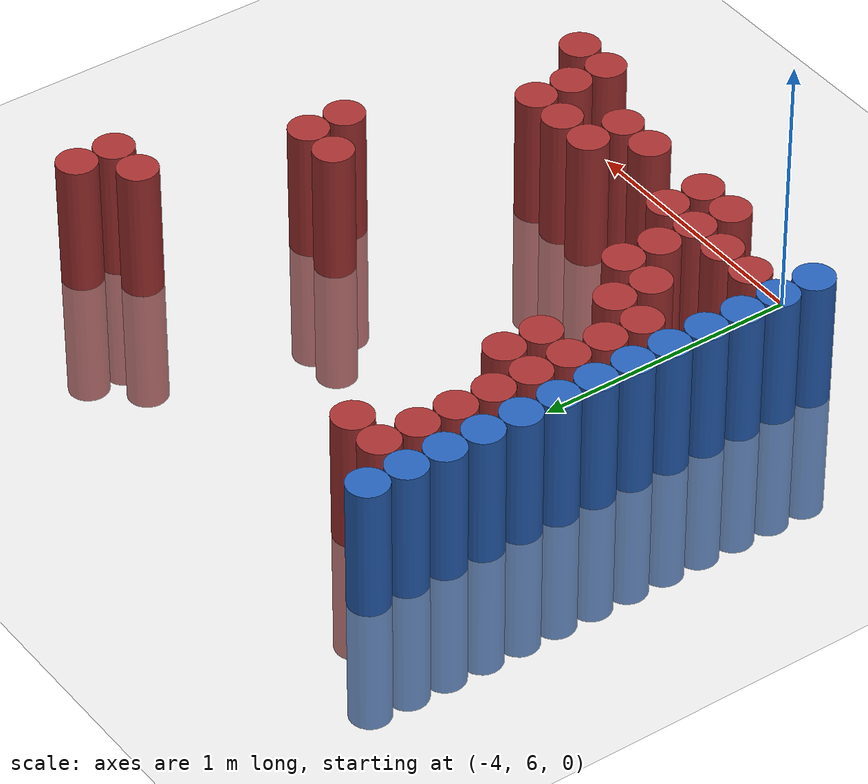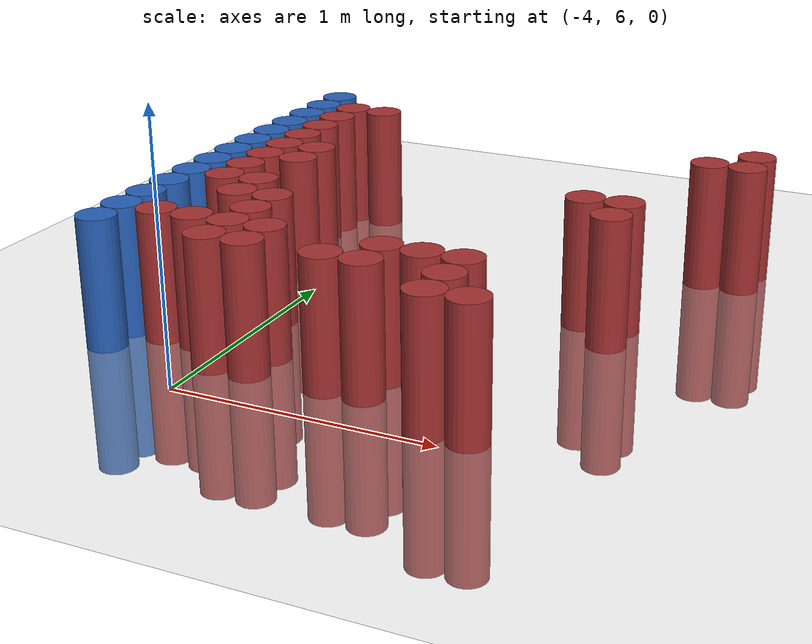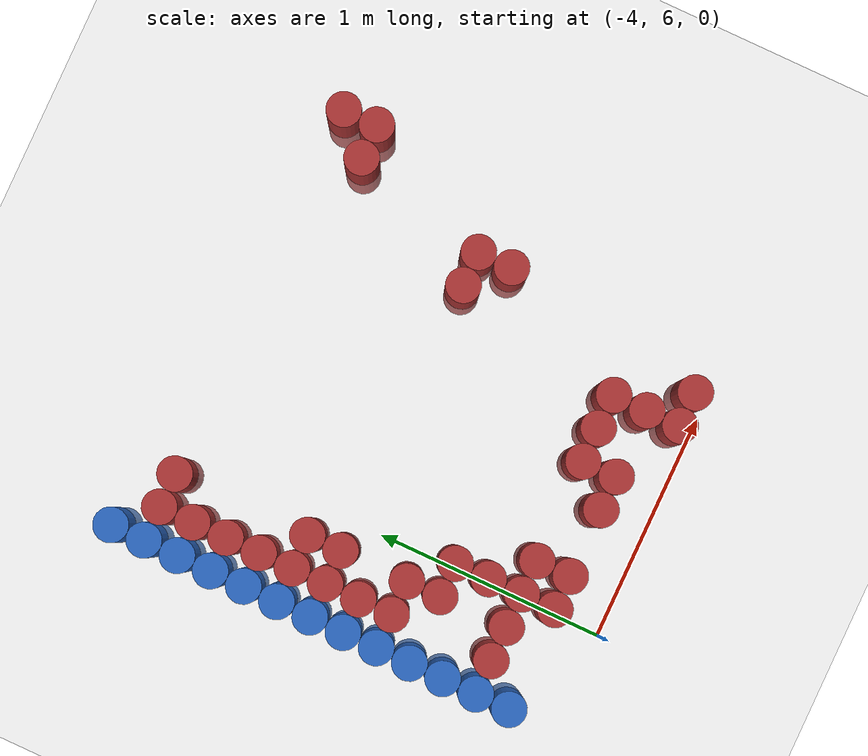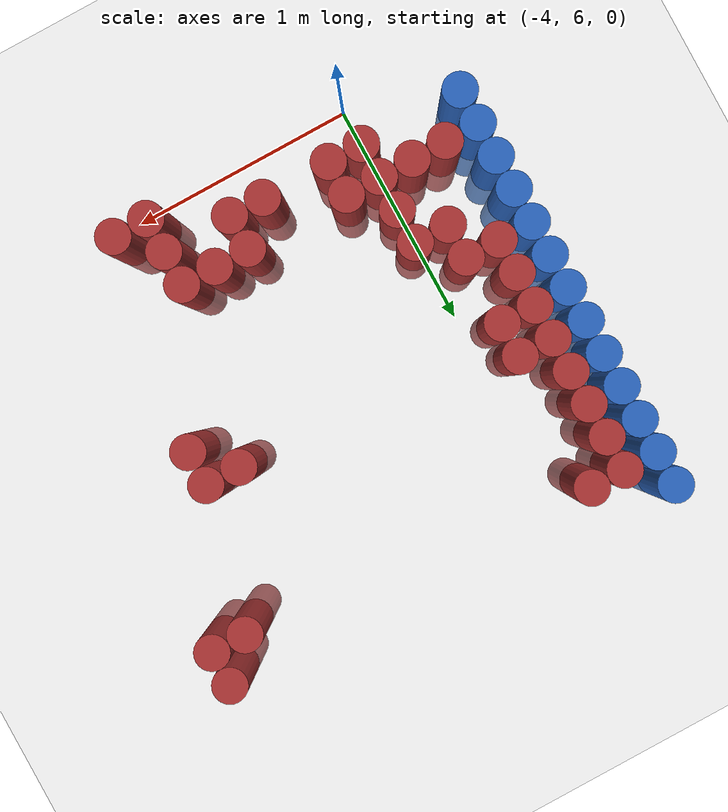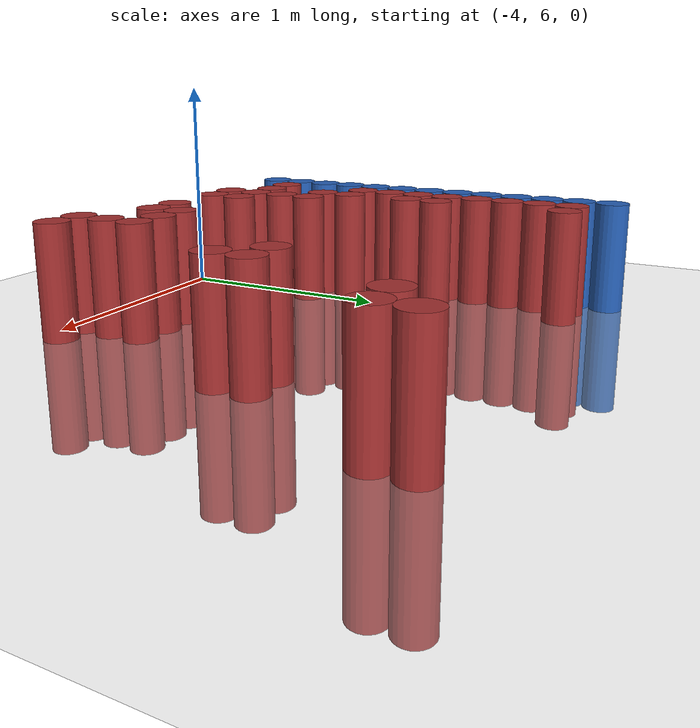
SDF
<sdf version="1.6">
 <world name="default">
  <model name="ground_plane">
   <static>1</static>
   <link name="link">
    <collision name="collision">
     <geometry><plane><normal>0 0 1</normal><size>100 100</size></plane></geometry>
     <surface><friction><ode><mu>100</mu><mu2>50</mu2></ode></friction></surface>
    </collision>
    <visual name="visual">
     <cast_shadows>0</cast_shadows>
     <geometry><plane><normal>0 0 1</normal><size>100 100</size></plane></geometry>
     <material>
      <script><uri>file://media/materials/scripts/gazebo.material</uri><name>Gazebo/Grey</name></script>
     </material>
    </visual>
   </link>
  </model>
  <model name="unit_cylinder_103">
   <static>1</static>
   <pose>-4.425000 6.225000 0.000000 0.000000 0.000000 0.000000</pose>
   <link name="link">
    <inertial>
     <mass>1</mass>
     <inertia><ixx>0.145833</ixx><ixy>0</ixy><ixz>0</ixz><iyy>0.145833</iyy><iyz>0</iyz><izz>0.125</izz></inertia>
    </inertial>
    <collision name="collision">
     <geometry><cylinder><radius>0.075000</radius><length>1</length></cylinder></geometry>
    </collision>
    <visual name="visual">
     <geometry><cylinder><radius>0.075000</radius><length>1</length></cylinder></geometry>
     <material>
      <ambient>0.152000 0.379000 0.720000 1</ambient>
      <diffuse>0.152000 0.379000 0.720000 1</diffuse>
     </material>
     <material>
      <script><name>Gazebo/Grey</name><uri>file://media/materials/scripts/gazebo.material</uri></script>
     </material>
    </visual>
   </link>
  </model>
  <model name="unit_cylinder_104">
   <static>1</static>
   <pose>-4.425000 6.375000 0.000000 0.000000 0.000000 0.000000</pose>
   <link name="link">
    <inertial>
     <mass>1</mass>
     <inertia><ixx>0.145833</ixx><ixy>0</ixy><ixz>0</ixz><iyy>0.145833</iyy><iyz>0</iyz><izz>0.125</izz></inertia>
    </inertial>
    <collision name="collision">
     <geometry><cylinder><radius>0.075000</radius><length>1</length></cylinder></geometry>
    </collision>
    <visual name="visual">
     <geometry><cylinder><radius>0.075000</radius><length>1</length></cylinder></geometry>
     <material>
      <ambient>0.152000 0.379000 0.720000 1</ambient>
      <diffuse>0.152000 0.379000 0.720000 1</diffuse>
     </material>
     <material>
      <script><name>Gazebo/Grey</name><uri>file://media/materials/scripts/gazebo.material</uri></script>
     </material>
    </visual>
   </link>
  </model>
  <model name="unit_cylinder_105">
   <static>1</static>
   <pose>-4.425000 6.525000 0.000000 0.000000 0.000000 0.000000</pose>
   <link name="link">
    <inertial>
     <mass>1</mass>
     <inertia><ixx>0.145833</ixx><ixy>0</ixy><ixz>0</ixz><iyy>0.145833</iyy><iyz>0</iyz><izz>0.125</izz></inertia>
    </inertial>
    <collision name="collision">
     <geometry><cylinder><radius>0.075000</radius><length>1</length></cylinder></geometry>
    </collision>
    <visual name="visual">
     <geometry><cylinder><radius>0.075000</radius><length>1</length></cylinder></geometry>
     <material>
      <ambient>0.152000 0.379000 0.720000 1</ambient>
      <diffuse>0.152000 0.379000 0.720000 1</diffuse>
     </material>
     <material>
      <script><name>Gazebo/Grey</name><uri>file://media/materials/scripts/gazebo.material</uri></script>
     </material>
    </visual>
   </link>
  </model>
  <model name="unit_cylinder_106">
   <static>1</static>
   <pose>-4.425000 6.675000 0.000000 0.000000 0.000000 0.000000</pose>
   <link name="link">
    <inertial>
     <mass>1</mass>
     <inertia><ixx>0.145833</ixx><ixy>0</ixy><ixz>0</ixz><iyy>0.145833</iyy><iyz>0</iyz><izz>0.125</izz></inertia>
    </inertial>
    <collision name="collision">
     <geometry><cylinder><radius>0.075000</radius><length>1</length></cylinder></geometry>
    </collision>
    <visual name="visual">
     <geometry><cylinder><radius>0.075000</radius><length>1</length></cylinder></geometry>
     <material>
      <ambient>0.152000 0.379000 0.720000 1</ambient>
      <diffuse>0.152000 0.379000 0.720000 1</diffuse>
     </material>
     <material>
      <script><name>Gazebo/Grey</name><uri>file://media/materials/scripts/gazebo.material</uri></script>
     </material>
    </visual>
   </link>
  </model>
  <model name="unit_cylinder_107">
   <static>1</static>
   <pose>-4.425000 6.825000 0.000000 0.000000 0.000000 0.000000</pose>
   <link name="link">
    <inertial>
     <mass>1</mass>
     <inertia><ixx>0.145833</ixx><ixy>0</ixy><ixz>0</ixz><iyy>0.145833</iyy><iyz>0</iyz><izz>0.125</izz></inertia>
    </inertial>
    <collision name="collision">
     <geometry><cylinder><radius>0.075000</radius><length>1</length></cylinder></geometry>
    </collision>
    <visual name="visual">
     <geometry><cylinder><radius>0.075000</radius><length>1</length></cylinder></geometry>
     <material>
      <ambient>0.152000 0.379000 0.720000 1</ambient>
      <diffuse>0.152000 0.379000 0.720000 1</diffuse>
     </material>
     <material>
      <script><name>Gazebo/Grey</name><uri>file://media/materials/scripts/gazebo.material</uri></script>
     </material>
    </visual>
   </link>
  </model>
  <model name="unit_cylinder_108">
   <static>1</static>
   <pose>-4.425000 6.975000 0.000000 0.000000 0.000000 0.000000</pose>
   <link name="link">
    <inertial>
     <mass>1</mass>
     <inertia><ixx>0.145833</ixx><ixy>0</ixy><ixz>0</ixz><iyy>0.145833</iyy><iyz>0</iyz><izz>0.125</izz></inertia>
    </inertial>
    <collision name="collision">
     <geometry><cylinder><radius>0.075000</radius><length>1</length></cylinder></geometry>
    </collision>
    <visual name="visual">
     <geometry><cylinder><radius>0.075000</radius><length>1</length></cylinder></geometry>
     <material>
      <ambient>0.152000 0.379000 0.720000 1</ambient>
      <diffuse>0.152000 0.379000 0.720000 1</diffuse>
     </material>
     <material>
      <script><name>Gazebo/Grey</name><uri>file://media/materials/scripts/gazebo.material</uri></script>
     </material>
    </visual>
   </link>
  </model>
  <model name="unit_cylinder_109">
   <static>1</static>
   <pose>-4.425000 7.125000 0.000000 0.000000 0.000000 0.000000</pose>
   <link name="link">
    <inertial>
     <mass>1</mass>
     <inertia><ixx>0.145833</ixx><ixy>0</ixy><ixz>0</ixz><iyy>0.145833</iyy><iyz>0</iyz><izz>0.125</izz></inertia>
    </inertial>
    <collision name="collision">
     <geometry><cylinder><radius>0.075000</radius><length>1</length></cylinder></geometry>
    </collision>
    <visual name="visual">
     <geometry><cylinder><radius>0.075000</radius><length>1</length></cylinder></geometry>
     <material>
      <ambient>0.152000 0.379000 0.720000 1</ambient>
      <diffuse>0.152000 0.379000 0.720000 1</diffuse>
     </material>
     <material>
      <script><name>Gazebo/Grey</name><uri>file://media/materials/scripts/gazebo.material</uri></script>
     </material>
    </visual>
   </link>
  </model>
  <model name="unit_cylinder_110">
   <static>1</static>
   <pose>-4.425000 7.275000 0.000000 0.000000 0.000000 0.000000</pose>
   <link name="link">
    <inertial>
     <mass>1</mass>
     <inertia><ixx>0.145833</ixx><ixy>0</ixy><ixz>0</ixz><iyy>0.145833</iyy><iyz>0</iyz><izz>0.125</izz></inertia>
    </inertial>
    <collision name="collision">
     <geometry><cylinder><radius>0.075000</radius><length>1</length></cylinder></geometry>
    </collision>
    <visual name="visual">
     <geometry><cylinder><radius>0.075000</radius><length>1</length></cylinder></geometry>
     <material>
      <ambient>0.152000 0.379000 0.720000 1</ambient>
      <diffuse>0.152000 0.379000 0.720000 1</diffuse>
     </material>
     <material>
      <script><name>Gazebo/Grey</name><uri>file://media/materials/scripts/gazebo.material</uri></script>
     </material>
    </visual>
   </link>
  </model>
  <model name="unit_cylinder_111">
   <static>1</static>
   <pose>-4.425000 7.425000 0.000000 0.000000 0.000000 0.000000</pose>
   <link name="link">
    <inertial>
     <mass>1</mass>
     <inertia><ixx>0.145833</ixx><ixy>0</ixy><ixz>0</ixz><iyy>0.145833</iyy><iyz>0</iyz><izz>0.125</izz></inertia>
    </inertial>
    <collision name="collision">
     <geometry><cylinder><radius>0.075000</radius><length>1</length></cylinder></geometry>
    </collision>
    <visual name="visual">
     <geometry><cylinder><radius>0.075000</radius><length>1</length></cylinder></geometry>
     <material>
      <ambient>0.152000 0.379000 0.720000 1</ambient>
      <diffuse>0.152000 0.379000 0.720000 1</diffuse>
     </material>
     <material>
      <script><name>Gazebo/Grey</name><uri>file://media/materials/scripts/gazebo.material</uri></script>
     </material>
    </visual>
   </link>
  </model>
  <model name="unit_cylinder_112">
   <static>1</static>
   <pose>-4.425000 7.575000 0.000000 0.000000 0.000000 0.000000</pose>
   <link name="link">
    <inertial>
     <mass>1</mass>
     <inertia><ixx>0.145833</ixx><ixy>0</ixy><ixz>0</ixz><iyy>0.145833</iyy><iyz>0</iyz><izz>0.125</izz></inertia>
    </inertial>
    <collision name="collision">
     <geometry><cylinder><radius>0.075000</radius><length>1</length></cylinder></geometry>
    </collision>
    <visual name="visual">
     <geometry><cylinder><radius>0.075000</radius><length>1</length></cylinder></geometry>
     <material>
      <ambient>0.152000 0.379000 0.720000 1</ambient>
      <diffuse>0.152000 0.379000 0.720000 1</diffuse>
     </material>
     <material>
      <script><name>Gazebo/Grey</name><uri>file://media/materials/scripts/gazebo.material</uri></script>
     </material>
    </visual>
   </link>
  </model>
  <model name="unit_cylinder_113">
   <static>1</static>
   <pose>-4.425000 7.725000 0.000000 0.000000 0.000000 0.000000</pose>
   <link name="link">
    <inertial>
     <mass>1</mass>
     <inertia><ixx>0.145833</ixx><ixy>0</ixy><ixz>0</ixz><iyy>0.145833</iyy><iyz>0</iyz><izz>0.125</izz></inertia>
    </inertial>
    <collision name="collision">
     <geometry><cylinder><radius>0.075000</radius><length>1</length></cylinder></geometry>
    </collision>
    <visual name="visual">
     <geometry><cylinder><radius>0.075000</radius><length>1</length></cylinder></geometry>
     <material>
      <ambient>0.152000 0.379000 0.720000 1</ambient>
      <diffuse>0.152000 0.379000 0.720000 1</diffuse>
     </material>
     <material>
      <script><name>Gazebo/Grey</name><uri>file://media/materials/scripts/gazebo.material</uri></script>
     </material>
    </visual>
   </link>
  </model>
  <model name="unit_cylinder_114">
   <static>1</static>
   <pose>-4.425000 7.875000 0.000000 0.000000 0.000000 0.000000</pose>
   <link name="link">
    <inertial>
     <mass>1</mass>
     <inertia><ixx>0.145833</ixx><ixy>0</ixy><ixz>0</ixz><iyy>0.145833</iyy><iyz>0</iyz><izz>0.125</izz></inertia>
    </inertial>
    <collision name="collision">
     <geometry><cylinder><radius>0.075000</radius><length>1</length></cylinder></geometry>
    </collision>
    <visual name="visual">
     <geometry><cylinder><radius>0.075000</radius><length>1</length></cylinder></geometry>
     <material>
      <ambient>0.152000 0.379000 0.720000 1</ambient>
      <diffuse>0.152000 0.379000 0.720000 1</diffuse>
     </material>
     <material>
      <script><name>Gazebo/Grey</name><uri>file://media/materials/scripts/gazebo.material</uri></script>
     </material>
    </visual>
   </link>
  </model>
  <model name="unit_cylinder_115">
   <static>1</static>
   <pose>-4.425000 8.025000 0.000000 0.000000 0.000000 0.000000</pose>
   <link name="link">
    <inertial>
     <mass>1</mass>
     <inertia><ixx>0.145833</ixx><ixy>0</ixy><ixz>0</ixz><iyy>0.145833</iyy><iyz>0</iyz><izz>0.125</izz></inertia>
    </inertial>
    <collision name="collision">
     <geometry><cylinder><radius>0.075000</radius><length>1</length></cylinder></geometry>
    </collision>
    <visual name="visual">
     <geometry><cylinder><radius>0.075000</radius><length>1</length></cylinder></geometry>
     <material>
      <ambient>0.152000 0.379000 0.720000 1</ambient>
      <diffuse>0.152000 0.379000 0.720000 1</diffuse>
     </material>
     <material>
      <script><name>Gazebo/Grey</name><uri>file://media/materials/scripts/gazebo.material</uri></script>
     </material>
    </visual>
   </link>
  </model>
  <model name="unit_cylinder_127">
   <static>1</static>
   <pose>-4.275000 6.375000 0.000000 0.000000 0.000000 0.000000</pose>
   <link name="link">
    <inertial>
     <mass>1</mass>
     <inertia><ixx>0.145833</ixx><ixy>0</ixy><ixz>0</ixz><iyy>0.145833</iyy><iyz>0</iyz><izz>0.125</izz></inertia>
    </inertial>
    <collision name="collision">
     <geometry><cylinder><radius>0.075000</radius><length>1</length></cylinder></geometry>
    </collision>
    <visual name="visual">
     <geometry><cylinder><radius>0.075000</radius><length>1</length></cylinder></geometry>
     <material>
      <ambient>0.648000 0.192000 0.192000 1</ambient>
      <diffuse>0.648000 0.192000 0.192000 1</diffuse>
     </material>
     <material>
      <script><name>Gazebo/Grey</name><uri>file://media/materials/scripts/gazebo.material</uri></script>
     </material>
    </visual>
   </link>
  </model>
  <model name="unit_cylinder_128">
   <static>1</static>
   <pose>-4.275000 6.825000 0.000000 0.000000 0.000000 0.000000</pose>
   <link name="link">
    <inertial>
     <mass>1</mass>
     <inertia><ixx>0.145833</ixx><ixy>0</ixy><ixz>0</ixz><iyy>0.145833</iyy><iyz>0</iyz><izz>0.125</izz></inertia>
    </inertial>
    <collision name="collision">
     <geometry><cylinder><radius>0.075000</radius><length>1</length></cylinder></geometry>
    </collision>
    <visual name="visual">
     <geometry><cylinder><radius>0.075000</radius><length>1</length></cylinder></geometry>
     <material>
      <ambient>0.648000 0.192000 0.192000 1</ambient>
      <diffuse>0.648000 0.192000 0.192000 1</diffuse>
     </material>
     <material>
      <script><name>Gazebo/Grey</name><uri>file://media/materials/scripts/gazebo.material</uri></script>
     </material>
    </visual>
   </link>
  </model>
  <model name="unit_cylinder_129">
   <static>1</static>
   <pose>-4.275000 6.975000 0.000000 0.000000 0.000000 0.000000</pose>
   <link name="link">
    <inertial>
     <mass>1</mass>
     <inertia><ixx>0.145833</ixx><ixy>0</ixy><ixz>0</ixz><iyy>0.145833</iyy><iyz>0</iyz><izz>0.125</izz></inertia>
    </inertial>
    <collision name="collision">
     <geometry><cylinder><radius>0.075000</radius><length>1</length></cylinder></geometry>
    </collision>
    <visual name="visual">
     <geometry><cylinder><radius>0.075000</radius><length>1</length></cylinder></geometry>
     <material>
      <ambient>0.648000 0.192000 0.192000 1</ambient>
      <diffuse>0.648000 0.192000 0.192000 1</diffuse>
     </material>
     <material>
      <script><name>Gazebo/Grey</name><uri>file://media/materials/scripts/gazebo.material</uri></script>
     </material>
    </visual>
   </link>
  </model>
  <model name="unit_cylinder_130">
   <static>1</static>
   <pose>-4.275000 7.125000 0.000000 0.000000 0.000000 0.000000</pose>
   <link name="link">
    <inertial>
     <mass>1</mass>
     <inertia><ixx>0.145833</ixx><ixy>0</ixy><ixz>0</ixz><iyy>0.145833</iyy><iyz>0</iyz><izz>0.125</izz></inertia>
    </inertial>
    <collision name="collision">
     <geometry><cylinder><radius>0.075000</radius><length>1</length></cylinder></geometry>
    </collision>
    <visual name="visual">
     <geometry><cylinder><radius>0.075000</radius><length>1</length></cylinder></geometry>
     <material>
      <ambient>0.648000 0.192000 0.192000 1</ambient>
      <diffuse>0.648000 0.192000 0.192000 1</diffuse>
     </material>
     <material>
      <script><name>Gazebo/Grey</name><uri>file://media/materials/scripts/gazebo.material</uri></script>
     </material>
    </visual>
   </link>
  </model>
  <model name="unit_cylinder_131">
   <static>1</static>
   <pose>-4.275000 7.275000 0.000000 0.000000 0.000000 0.000000</pose>
   <link name="link">
    <inertial>
     <mass>1</mass>
     <inertia><ixx>0.145833</ixx><ixy>0</ixy><ixz>0</ixz><iyy>0.145833</iyy><iyz>0</iyz><izz>0.125</izz></inertia>
    </inertial>
    <collision name="collision">
     <geometry><cylinder><radius>0.075000</radius><length>1</length></cylinder></geometry>
    </collision>
    <visual name="visual">
     <geometry><cylinder><radius>0.075000</radius><length>1</length></cylinder></geometry>
     <material>
      <ambient>0.648000 0.192000 0.192000 1</ambient>
      <diffuse>0.648000 0.192000 0.192000 1</diffuse>
     </material>
     <material>
      <script><name>Gazebo/Grey</name><uri>file://media/materials/scripts/gazebo.material</uri></script>
     </material>
    </visual>
   </link>
  </model>
  <model name="unit_cylinder_132">
   <static>1</static>
   <pose>-4.275000 7.425000 0.000000 0.000000 0.000000 0.000000</pose>
   <link name="link">
    <inertial>
     <mass>1</mass>
     <inertia><ixx>0.145833</ixx><ixy>0</ixy><ixz>0</ixz><iyy>0.145833</iyy><iyz>0</iyz><izz>0.125</izz></inertia>
    </inertial>
    <collision name="collision">
     <geometry><cylinder><radius>0.075000</radius><length>1</length></cylinder></geometry>
    </collision>
    <visual name="visual">
     <geometry><cylinder><radius>0.075000</radius><length>1</length></cylinder></geometry>
     <material>
      <ambient>0.648000 0.192000 0.192000 1</ambient>
      <diffuse>0.648000 0.192000 0.192000 1</diffuse>
     </material>
     <material>
      <script><name>Gazebo/Grey</name><uri>file://media/materials/scripts/gazebo.material</uri></script>
     </material>
    </visual>
   </link>
  </model>
  <model name="unit_cylinder_133">
   <static>1</static>
   <pose>-4.275000 7.575000 0.000000 0.000000 0.000000 0.000000</pose>
   <link name="link">
    <inertial>
     <mass>1</mass>
     <inertia><ixx>0.145833</ixx><ixy>0</ixy><ixz>0</ixz><iyy>0.145833</iyy><iyz>0</iyz><izz>0.125</izz></inertia>
    </inertial>
    <collision name="collision">
     <geometry><cylinder><radius>0.075000</radius><length>1</length></cylinder></geometry>
    </collision>
    <visual name="visual">
     <geometry><cylinder><radius>0.075000</radius><length>1</length></cylinder></geometry>
     <material>
      <ambient>0.648000 0.192000 0.192000 1</ambient>
      <diffuse>0.648000 0.192000 0.192000 1</diffuse>
     </material>
     <material>
      <script><name>Gazebo/Grey</name><uri>file://media/materials/scripts/gazebo.material</uri></script>
     </material>
    </visual>
   </link>
  </model>
  <model name="unit_cylinder_134">
   <static>1</static>
   <pose>-4.275000 7.725000 0.000000 0.000000 0.000000 0.000000</pose>
   <link name="link">
    <inertial>
     <mass>1</mass>
     <inertia><ixx>0.145833</ixx><ixy>0</ixy><ixz>0</ixz><iyy>0.145833</iyy><iyz>0</iyz><izz>0.125</izz></inertia>
    </inertial>
    <collision name="collision">
     <geometry><cylinder><radius>0.075000</radius><length>1</length></cylinder></geometry>
    </collision>
    <visual name="visual">
     <geometry><cylinder><radius>0.075000</radius><length>1</length></cylinder></geometry>
     <material>
      <ambient>0.648000 0.192000 0.192000 1</ambient>
      <diffuse>0.648000 0.192000 0.192000 1</diffuse>
     </material>
     <material>
      <script><name>Gazebo/Grey</name><uri>file://media/materials/scripts/gazebo.material</uri></script>
     </material>
    </visual>
   </link>
  </model>
  <model name="unit_cylinder_135">
   <static>1</static>
   <pose>-4.275000 7.875000 0.000000 0.000000 0.000000 0.000000</pose>
   <link name="link">
    <inertial>
     <mass>1</mass>
     <inertia><ixx>0.145833</ixx><ixy>0</ixy><ixz>0</ixz><iyy>0.145833</iyy><iyz>0</iyz><izz>0.125</izz></inertia>
    </inertial>
    <collision name="collision">
     <geometry><cylinder><radius>0.075000</radius><length>1</length></cylinder></geometry>
    </collision>
    <visual name="visual">
     <geometry><cylinder><radius>0.075000</radius><length>1</length></cylinder></geometry>
     <material>
      <ambient>0.648000 0.192000 0.192000 1</ambient>
      <diffuse>0.648000 0.192000 0.192000 1</diffuse>
     </material>
     <material>
      <script><name>Gazebo/Grey</name><uri>file://media/materials/scripts/gazebo.material</uri></script>
     </material>
    </visual>
   </link>
  </model>
  <model name="unit_cylinder_138">
   <static>1</static>
   <pose>-4.125000 6.375000 0.000000 0.000000 0.000000 0.000000</pose>
   <link name="link">
    <inertial>
     <mass>1</mass>
     <inertia><ixx>0.145833</ixx><ixy>0</ixy><ixz>0</ixz><iyy>0.145833</iyy><iyz>0</iyz><izz>0.125</izz></inertia>
    </inertial>
    <collision name="collision">
     <geometry><cylinder><radius>0.075000</radius><length>1</length></cylinder></geometry>
    </collision>
    <visual name="visual">
     <geometry><cylinder><radius>0.075000</radius><length>1</length></cylinder></geometry>
     <material>
      <ambient>0.648000 0.192000 0.192000 1</ambient>
      <diffuse>0.648000 0.192000 0.192000 1</diffuse>
     </material>
     <material>
      <script><name>Gazebo/Grey</name><uri>file://media/materials/scripts/gazebo.material</uri></script>
     </material>
    </visual>
   </link>
  </model>
  <model name="unit_cylinder_139">
   <static>1</static>
   <pose>-4.125000 6.675000 0.000000 0.000000 0.000000 0.000000</pose>
   <link name="link">
    <inertial>
     <mass>1</mass>
     <inertia><ixx>0.145833</ixx><ixy>0</ixy><ixz>0</ixz><iyy>0.145833</iyy><iyz>0</iyz><izz>0.125</izz></inertia>
    </inertial>
    <collision name="collision">
     <geometry><cylinder><radius>0.075000</radius><length>1</length></cylinder></geometry>
    </collision>
    <visual name="visual">
     <geometry><cylinder><radius>0.075000</radius><length>1</length></cylinder></geometry>
     <material>
      <ambient>0.648000 0.192000 0.192000 1</ambient>
      <diffuse>0.648000 0.192000 0.192000 1</diffuse>
     </material>
     <material>
      <script><name>Gazebo/Grey</name><uri>file://media/materials/scripts/gazebo.material</uri></script>
     </material>
    </visual>
   </link>
  </model>
  <model name="unit_cylinder_140">
   <static>1</static>
   <pose>-4.125000 6.825000 0.000000 0.000000 0.000000 0.000000</pose>
   <link name="link">
    <inertial>
     <mass>1</mass>
     <inertia><ixx>0.145833</ixx><ixy>0</ixy><ixz>0</ixz><iyy>0.145833</iyy><iyz>0</iyz><izz>0.125</izz></inertia>
    </inertial>
    <collision name="collision">
     <geometry><cylinder><radius>0.075000</radius><length>1</length></cylinder></geometry>
    </collision>
    <visual name="visual">
     <geometry><cylinder><radius>0.075000</radius><length>1</length></cylinder></geometry>
     <material>
      <ambient>0.648000 0.192000 0.192000 1</ambient>
      <diffuse>0.648000 0.192000 0.192000 1</diffuse>
     </material>
     <material>
      <script><name>Gazebo/Grey</name><uri>file://media/materials/scripts/gazebo.material</uri></script>
     </material>
    </visual>
   </link>
  </model>
  <model name="unit_cylinder_141">
   <static>1</static>
   <pose>-4.125000 7.125000 0.000000 0.000000 0.000000 0.000000</pose>
   <link name="link">
    <inertial>
     <mass>1</mass>
     <inertia><ixx>0.145833</ixx><ixy>0</ixy><ixz>0</ixz><iyy>0.145833</iyy><iyz>0</iyz><izz>0.125</izz></inertia>
    </inertial>
    <collision name="collision">
     <geometry><cylinder><radius>0.075000</radius><length>1</length></cylinder></geometry>
    </collision>
    <visual name="visual">
     <geometry><cylinder><radius>0.075000</radius><length>1</length></cylinder></geometry>
     <material>
      <ambient>0.648000 0.192000 0.192000 1</ambient>
      <diffuse>0.648000 0.192000 0.192000 1</diffuse>
     </material>
     <material>
      <script><name>Gazebo/Grey</name><uri>file://media/materials/scripts/gazebo.material</uri></script>
     </material>
    </visual>
   </link>
  </model>
  <model name="unit_cylinder_142">
   <static>1</static>
   <pose>-4.125000 7.275000 0.000000 0.000000 0.000000 0.000000</pose>
   <link name="link">
    <inertial>
     <mass>1</mass>
     <inertia><ixx>0.145833</ixx><ixy>0</ixy><ixz>0</ixz><iyy>0.145833</iyy><iyz>0</iyz><izz>0.125</izz></inertia>
    </inertial>
    <collision name="collision">
     <geometry><cylinder><radius>0.075000</radius><length>1</length></cylinder></geometry>
    </collision>
    <visual name="visual">
     <geometry><cylinder><radius>0.075000</radius><length>1</length></cylinder></geometry>
     <material>
      <ambient>0.648000 0.192000 0.192000 1</ambient>
      <diffuse>0.648000 0.192000 0.192000 1</diffuse>
     </material>
     <material>
      <script><name>Gazebo/Grey</name><uri>file://media/materials/scripts/gazebo.material</uri></script>
     </material>
    </visual>
   </link>
  </model>
  <model name="unit_cylinder_143">
   <static>1</static>
   <pose>-4.125000 7.875000 0.000000 0.000000 0.000000 0.000000</pose>
   <link name="link">
    <inertial>
     <mass>1</mass>
     <inertia><ixx>0.145833</ixx><ixy>0</ixy><ixz>0</ixz><iyy>0.145833</iyy><iyz>0</iyz><izz>0.125</izz></inertia>
    </inertial>
    <collision name="collision">
     <geometry><cylinder><radius>0.075000</radius><length>1</length></cylinder></geometry>
    </collision>
    <visual name="visual">
     <geometry><cylinder><radius>0.075000</radius><length>1</length></cylinder></geometry>
     <material>
      <ambient>0.648000 0.192000 0.192000 1</ambient>
      <diffuse>0.648000 0.192000 0.192000 1</diffuse>
     </material>
     <material>
      <script><name>Gazebo/Grey</name><uri>file://media/materials/scripts/gazebo.material</uri></script>
     </material>
    </visual>
   </link>
  </model>
  <model name="unit_cylinder_151">
   <static>1</static>
   <pose>-3.975000 6.225000 0.000000 0.000000 0.000000 0.000000</pose>
   <link name="link">
    <inertial>
     <mass>1</mass>
     <inertia><ixx>0.145833</ixx><ixy>0</ixy><ixz>0</ixz><iyy>0.145833</iyy><iyz>0</iyz><izz>0.125</izz></inertia>
    </inertial>
    <collision name="collision">
     <geometry><cylinder><radius>0.075000</radius><length>1</length></cylinder></geometry>
    </collision>
    <visual name="visual">
     <geometry><cylinder><radius>0.075000</radius><length>1</length></cylinder></geometry>
     <material>
      <ambient>0.648000 0.192000 0.192000 1</ambient>
      <diffuse>0.648000 0.192000 0.192000 1</diffuse>
     </material>
     <material>
      <script><name>Gazebo/Grey</name><uri>file://media/materials/scripts/gazebo.material</uri></script>
     </material>
    </visual>
   </link>
  </model>
  <model name="unit_cylinder_152">
   <static>1</static>
   <pose>-3.975000 6.375000 0.000000 0.000000 0.000000 0.000000</pose>
   <link name="link">
    <inertial>
     <mass>1</mass>
     <inertia><ixx>0.145833</ixx><ixy>0</ixy><ixz>0</ixz><iyy>0.145833</iyy><iyz>0</iyz><izz>0.125</izz></inertia>
    </inertial>
    <collision name="collision">
     <geometry><cylinder><radius>0.075000</radius><length>1</length></cylinder></geometry>
    </collision>
    <visual name="visual">
     <geometry><cylinder><radius>0.075000</radius><length>1</length></cylinder></geometry>
     <material>
      <ambient>0.648000 0.192000 0.192000 1</ambient>
      <diffuse>0.648000 0.192000 0.192000 1</diffuse>
     </material>
     <material>
      <script><name>Gazebo/Grey</name><uri>file://media/materials/scripts/gazebo.material</uri></script>
     </material>
    </visual>
   </link>
  </model>
  <model name="unit_cylinder_153">
   <static>1</static>
   <pose>-3.975000 6.525000 0.000000 0.000000 0.000000 0.000000</pose>
   <link name="link">
    <inertial>
     <mass>1</mass>
     <inertia><ixx>0.145833</ixx><ixy>0</ixy><ixz>0</ixz><iyy>0.145833</iyy><iyz>0</iyz><izz>0.125</izz></inertia>
    </inertial>
    <collision name="collision">
     <geometry><cylinder><radius>0.075000</radius><length>1</length></cylinder></geometry>
    </collision>
    <visual name="visual">
     <geometry><cylinder><radius>0.075000</radius><length>1</length></cylinder></geometry>
     <material>
      <ambient>0.648000 0.192000 0.192000 1</ambient>
      <diffuse>0.648000 0.192000 0.192000 1</diffuse>
     </material>
     <material>
      <script><name>Gazebo/Grey</name><uri>file://media/materials/scripts/gazebo.material</uri></script>
     </material>
    </visual>
   </link>
  </model>
  <model name="unit_cylinder_154">
   <static>1</static>
   <pose>-3.975000 6.675000 0.000000 0.000000 0.000000 0.000000</pose>
   <link name="link">
    <inertial>
     <mass>1</mass>
     <inertia><ixx>0.145833</ixx><ixy>0</ixy><ixz>0</ixz><iyy>0.145833</iyy><iyz>0</iyz><izz>0.125</izz></inertia>
    </inertial>
    <collision name="collision">
     <geometry><cylinder><radius>0.075000</radius><length>1</length></cylinder></geometry>
    </collision>
    <visual name="visual">
     <geometry><cylinder><radius>0.075000</radius><length>1</length></cylinder></geometry>
     <material>
      <ambient>0.648000 0.192000 0.192000 1</ambient>
      <diffuse>0.648000 0.192000 0.192000 1</diffuse>
     </material>
     <material>
      <script><name>Gazebo/Grey</name><uri>file://media/materials/scripts/gazebo.material</uri></script>
     </material>
    </visual>
   </link>
  </model>
  <model name="unit_cylinder_164">
   <static>1</static>
   <pose>-3.825000 6.225000 0.000000 0.000000 0.000000 0.000000</pose>
   <link name="link">
    <inertial>
     <mass>1</mass>
     <inertia><ixx>0.145833</ixx><ixy>0</ixy><ixz>0</ixz><iyy>0.145833</iyy><iyz>0</iyz><izz>0.125</izz></inertia>
    </inertial>
    <collision name="collision">
     <geometry><cylinder><radius>0.075000</radius><length>1</length></cylinder></geometry>
    </collision>
    <visual name="visual">
     <geometry><cylinder><radius>0.075000</radius><length>1</length></cylinder></geometry>
     <material>
      <ambient>0.648000 0.192000 0.192000 1</ambient>
      <diffuse>0.648000 0.192000 0.192000 1</diffuse>
     </material>
     <material>
      <script><name>Gazebo/Grey</name><uri>file://media/materials/scripts/gazebo.material</uri></script>
     </material>
    </visual>
   </link>
  </model>
  <model name="unit_cylinder_165">
   <static>1</static>
   <pose>-3.825000 6.375000 0.000000 0.000000 0.000000 0.000000</pose>
   <link name="link">
    <inertial>
     <mass>1</mass>
     <inertia><ixx>0.145833</ixx><ixy>0</ixy><ixz>0</ixz><iyy>0.145833</iyy><iyz>0</iyz><izz>0.125</izz></inertia>
    </inertial>
    <collision name="collision">
     <geometry><cylinder><radius>0.075000</radius><length>1</length></cylinder></geometry>
    </collision>
    <visual name="visual">
     <geometry><cylinder><radius>0.075000</radius><length>1</length></cylinder></geometry>
     <material>
      <ambient>0.648000 0.192000 0.192000 1</ambient>
      <diffuse>0.648000 0.192000 0.192000 1</diffuse>
     </material>
     <material>
      <script><name>Gazebo/Grey</name><uri>file://media/materials/scripts/gazebo.material</uri></script>
     </material>
    </visual>
   </link>
  </model>
  <model name="unit_cylinder_178">
   <static>1</static>
   <pose>-3.525000 6.225000 0.000000 0.000000 0.000000 0.000000</pose>
   <link name="link">
    <inertial>
     <mass>1</mass>
     <inertia><ixx>0.145833</ixx><ixy>0</ixy><ixz>0</ixz><iyy>0.145833</iyy><iyz>0</iyz><izz>0.125</izz></inertia>
    </inertial>
    <collision name="collision">
     <geometry><cylinder><radius>0.075000</radius><length>1</length></cylinder></geometry>
    </collision>
    <visual name="visual">
     <geometry><cylinder><radius>0.075000</radius><length>1</length></cylinder></geometry>
     <material>
      <ambient>0.648000 0.192000 0.192000 1</ambient>
      <diffuse>0.648000 0.192000 0.192000 1</diffuse>
     </material>
     <material>
      <script><name>Gazebo/Grey</name><uri>file://media/materials/scripts/gazebo.material</uri></script>
     </material>
    </visual>
   </link>
  </model>
  <model name="unit_cylinder_185">
   <static>1</static>
   <pose>-3.375000 6.225000 0.000000 0.000000 0.000000 0.000000</pose>
   <link name="link">
    <inertial>
     <mass>1</mass>
     <inertia><ixx>0.145833</ixx><ixy>0</ixy><ixz>0</ixz><iyy>0.145833</iyy><iyz>0</iyz><izz>0.125</izz></inertia>
    </inertial>
    <collision name="collision">
     <geometry><cylinder><radius>0.075000</radius><length>1</length></cylinder></geometry>
    </collision>
    <visual name="visual">
     <geometry><cylinder><radius>0.075000</radius><length>1</length></cylinder></geometry>
     <material>
      <ambient>0.648000 0.192000 0.192000 1</ambient>
      <diffuse>0.648000 0.192000 0.192000 1</diffuse>
     </material>
     <material>
      <script><name>Gazebo/Grey</name><uri>file://media/materials/scripts/gazebo.material</uri></script>
     </material>
    </visual>
   </link>
  </model>
  <model name="unit_cylinder_186">
   <static>1</static>
   <pose>-3.375000 6.375000 0.000000 0.000000 0.000000 0.000000</pose>
   <link name="link">
    <inertial>
     <mass>1</mass>
     <inertia><ixx>0.145833</ixx><ixy>0</ixy><ixz>0</ixz><iyy>0.145833</iyy><iyz>0</iyz><izz>0.125</izz></inertia>
    </inertial>
    <collision name="collision">
     <geometry><cylinder><radius>0.075000</radius><length>1</length></cylinder></geometry>
    </collision>
    <visual name="visual">
     <geometry><cylinder><radius>0.075000</radius><length>1</length></cylinder></geometry>
     <material>
      <ambient>0.648000 0.192000 0.192000 1</ambient>
      <diffuse>0.648000 0.192000 0.192000 1</diffuse>
     </material>
     <material>
      <script><name>Gazebo/Grey</name><uri>file://media/materials/scripts/gazebo.material</uri></script>
     </material>
    </visual>
   </link>
  </model>
  <model name="unit_cylinder_189">
   <static>1</static>
   <pose>-3.225000 6.375000 0.000000 0.000000 0.000000 0.000000</pose>
   <link name="link">
    <inertial>
     <mass>1</mass>
     <inertia><ixx>0.145833</ixx><ixy>0</ixy><ixz>0</ixz><iyy>0.145833</iyy><iyz>0</iyz><izz>0.125</izz></inertia>
    </inertial>
    <collision name="collision">
     <geometry><cylinder><radius>0.075000</radius><length>1</length></cylinder></geometry>
    </collision>
    <visual name="visual">
     <geometry><cylinder><radius>0.075000</radius><length>1</length></cylinder></geometry>
     <material>
      <ambient>0.648000 0.192000 0.192000 1</ambient>
      <diffuse>0.648000 0.192000 0.192000 1</diffuse>
     </material>
     <material>
      <script><name>Gazebo/Grey</name><uri>file://media/materials/scripts/gazebo.material</uri></script>
     </material>
    </visual>
   </link>
  </model>
  <model name="unit_cylinder_190">
   <static>1</static>
   <pose>-3.075000 6.075000 0.000000 0.000000 0.000000 0.000000</pose>
   <link name="link">
    <inertial>
     <mass>1</mass>
     <inertia><ixx>0.145833</ixx><ixy>0</ixy><ixz>0</ixz><iyy>0.145833</iyy><iyz>0</iyz><izz>0.125</izz></inertia>
    </inertial>
    <collision name="collision">
     <geometry><cylinder><radius>0.075000</radius><length>1</length></cylinder></geometry>
    </collision>
    <visual name="visual">
     <geometry><cylinder><radius>0.075000</radius><length>1</length></cylinder></geometry>
     <material>
      <ambient>0.648000 0.192000 0.192000 1</ambient>
      <diffuse>0.648000 0.192000 0.192000 1</diffuse>
     </material>
     <material>
      <script><name>Gazebo/Grey</name><uri>file://media/materials/scripts/gazebo.material</uri></script>
     </material>
    </visual>
   </link>
  </model>
  <model name="unit_cylinder_191">
   <static>1</static>
   <pose>-3.075000 6.225000 0.000000 0.000000 0.000000 0.000000</pose>
   <link name="link">
    <inertial>
     <mass>1</mass>
     <inertia><ixx>0.145833</ixx><ixy>0</ixy><ixz>0</ixz><iyy>0.145833</iyy><iyz>0</iyz><izz>0.125</izz></inertia>
    </inertial>
    <collision name="collision">
     <geometry><cylinder><radius>0.075000</radius><length>1</length></cylinder></geometry>
    </collision>
    <visual name="visual">
     <geometry><cylinder><radius>0.075000</radius><length>1</length></cylinder></geometry>
     <material>
      <ambient>0.648000 0.192000 0.192000 1</ambient>
      <diffuse>0.648000 0.192000 0.192000 1</diffuse>
     </material>
     <material>
      <script><name>Gazebo/Grey</name><uri>file://media/materials/scripts/gazebo.material</uri></script>
     </material>
    </visual>
   </link>
  </model>
  <model name="unit_cylinder_192">
   <static>1</static>
   <pose>-3.075000 6.375000 0.000000 0.000000 0.000000 0.000000</pose>
   <link name="link">
    <inertial>
     <mass>1</mass>
     <inertia><ixx>0.145833</ixx><ixy>0</ixy><ixz>0</ixz><iyy>0.145833</iyy><iyz>0</iyz><izz>0.125</izz></inertia>
    </inertial>
    <collision name="collision">
     <geometry><cylinder><radius>0.075000</radius><length>1</length></cylinder></geometry>
    </collision>
    <visual name="visual">
     <geometry><cylinder><radius>0.075000</radius><length>1</length></cylinder></geometry>
     <material>
      <ambient>0.648000 0.192000 0.192000 1</ambient>
      <diffuse>0.648000 0.192000 0.192000 1</diffuse>
     </material>
     <material>
      <script><name>Gazebo/Grey</name><uri>file://media/materials/scripts/gazebo.material</uri></script>
     </material>
    </visual>
   </link>
  </model>
  <model name="unit_cylinder_193">
   <static>1</static>
   <pose>-2.925000 6.075000 0.000000 0.000000 0.000000 0.000000</pose>
   <link name="link">
    <inertial>
     <mass>1</mass>
     <inertia><ixx>0.145833</ixx><ixy>0</ixy><ixz>0</ixz><iyy>0.145833</iyy><iyz>0</iyz><izz>0.125</izz></inertia>
    </inertial>
    <collision name="collision">
     <geometry><cylinder><radius>0.075000</radius><length>1</length></cylinder></geometry>
    </collision>
    <visual name="visual">
     <geometry><cylinder><radius>0.075000</radius><length>1</length></cylinder></geometry>
     <material>
      <ambient>0.648000 0.192000 0.192000 1</ambient>
      <diffuse>0.648000 0.192000 0.192000 1</diffuse>
     </material>
     <material>
      <script><name>Gazebo/Grey</name><uri>file://media/materials/scripts/gazebo.material</uri></script>
     </material>
    </visual>
   </link>
  </model>
  <model name="unit_cylinder_194">
   <static>1</static>
   <pose>-2.925000 7.125000 0.000000 0.000000 0.000000 0.000000</pose>
   <link name="link">
    <inertial>
     <mass>1</mass>
     <inertia><ixx>0.145833</ixx><ixy>0</ixy><ixz>0</ixz><iyy>0.145833</iyy><iyz>0</iyz><izz>0.125</izz></inertia>
    </inertial>
    <collision name="collision">
     <geometry><cylinder><radius>0.075000</radius><length>1</length></cylinder></geometry>
    </collision>
    <visual name="visual">
     <geometry><cylinder><radius>0.075000</radius><length>1</length></cylinder></geometry>
     <material>
      <ambient>0.648000 0.192000 0.192000 1</ambient>
      <diffuse>0.648000 0.192000 0.192000 1</diffuse>
     </material>
     <material>
      <script><name>Gazebo/Grey</name><uri>file://media/materials/scripts/gazebo.material</uri></script>
     </material>
    </visual>
   </link>
  </model>
  <model name="unit_cylinder_195">
   <static>1</static>
   <pose>-2.775000 6.975000 0.000000 0.000000 0.000000 0.000000</pose>
   <link name="link">
    <inertial>
     <mass>1</mass>
     <inertia><ixx>0.145833</ixx><ixy>0</ixy><ixz>0</ixz><iyy>0.145833</iyy><iyz>0</iyz><izz>0.125</izz></inertia>
    </inertial>
    <collision name="collision">
     <geometry><cylinder><radius>0.075000</radius><length>1</length></cylinder></geometry>
    </collision>
    <visual name="visual">
     <geometry><cylinder><radius>0.075000</radius><length>1</length></cylinder></geometry>
     <material>
      <ambient>0.648000 0.192000 0.192000 1</ambient>
      <diffuse>0.648000 0.192000 0.192000 1</diffuse>
     </material>
     <material>
      <script><name>Gazebo/Grey</name><uri>file://media/materials/scripts/gazebo.material</uri></script>
     </material>
    </visual>
   </link>
  </model>
  <model name="unit_cylinder_196">
   <static>1</static>
   <pose>-2.775000 7.125000 0.000000 0.000000 0.000000 0.000000</pose>
   <link name="link">
    <inertial>
     <mass>1</mass>
     <inertia><ixx>0.145833</ixx><ixy>0</ixy><ixz>0</ixz><iyy>0.145833</iyy><iyz>0</iyz><izz>0.125</izz></inertia>
    </inertial>
    <collision name="collision">
     <geometry><cylinder><radius>0.075000</radius><length>1</length></cylinder></geometry>
    </collision>
    <visual name="visual">
     <geometry><cylinder><radius>0.075000</radius><length>1</length></cylinder></geometry>
     <material>
      <ambient>0.648000 0.192000 0.192000 1</ambient>
      <diffuse>0.648000 0.192000 0.192000 1</diffuse>
     </material>
     <material>
      <script><name>Gazebo/Grey</name><uri>file://media/materials/scripts/gazebo.material</uri></script>
     </material>
    </visual>
   </link>
  </model>
  <model name="unit_cylinder_201">
   <static>1</static>
   <pose>-2.625000 7.725000 0.000000 0.000000 0.000000 0.000000</pose>
   <link name="link">
    <inertial>
     <mass>1</mass>
     <inertia><ixx>0.145833</ixx><ixy>0</ixy><ixz>0</ixz><iyy>0.145833</iyy><iyz>0</iyz><izz>0.125</izz></inertia>
    </inertial>
    <collision name="collision">
     <geometry><cylinder><radius>0.075000</radius><length>1</length></cylinder></geometry>
    </collision>
    <visual name="visual">
     <geometry><cylinder><radius>0.075000</radius><length>1</length></cylinder></geometry>
     <material>
      <ambient>0.648000 0.192000 0.192000 1</ambient>
      <diffuse>0.648000 0.192000 0.192000 1</diffuse>
     </material>
     <material>
      <script><name>Gazebo/Grey</name><uri>file://media/materials/scripts/gazebo.material</uri></script>
     </material>
    </visual>
   </link>
  </model>
  <model name="unit_cylinder_206">
   <static>1</static>
   <pose>-2.475000 7.725000 0.000000 0.000000 0.000000 0.000000</pose>
   <link name="link">
    <inertial>
     <mass>1</mass>
     <inertia><ixx>0.145833</ixx><ixy>0</ixy><ixz>0</ixz><iyy>0.145833</iyy><iyz>0</iyz><izz>0.125</izz></inertia>
    </inertial>
    <collision name="collision">
     <geometry><cylinder><radius>0.075000</radius><length>1</length></cylinder></geometry>
    </collision>
    <visual name="visual">
     <geometry><cylinder><radius>0.075000</radius><length>1</length></cylinder></geometry>
     <material>
      <ambient>0.648000 0.192000 0.192000 1</ambient>
      <diffuse>0.648000 0.192000 0.192000 1</diffuse>
     </material>
     <material>
      <script><name>Gazebo/Grey</name><uri>file://media/materials/scripts/gazebo.material</uri></script>
     </material>
    </visual>
   </link>
  </model>
  <model name="unit_cylinder_207">
   <static>1</static>
   <pose>-2.475000 7.875000 0.000000 0.000000 0.000000 0.000000</pose>
   <link name="link">
    <inertial>
     <mass>1</mass>
     <inertia><ixx>0.145833</ixx><ixy>0</ixy><ixz>0</ixz><iyy>0.145833</iyy><iyz>0</iyz><izz>0.125</izz></inertia>
    </inertial>
    <collision name="collision">
     <geometry><cylinder><radius>0.075000</radius><length>1</length></cylinder></geometry>
    </collision>
    <visual name="visual">
     <geometry><cylinder><radius>0.075000</radius><length>1</length></cylinder></geometry>
     <material>
      <ambient>0.648000 0.192000 0.192000 1</ambient>
      <diffuse>0.648000 0.192000 0.192000 1</diffuse>
     </material>
     <material>
      <script><name>Gazebo/Grey</name><uri>file://media/materials/scripts/gazebo.material</uri></script>
     </material>
    </visual>
   </link>
  </model>
 </world>
</sdf>
